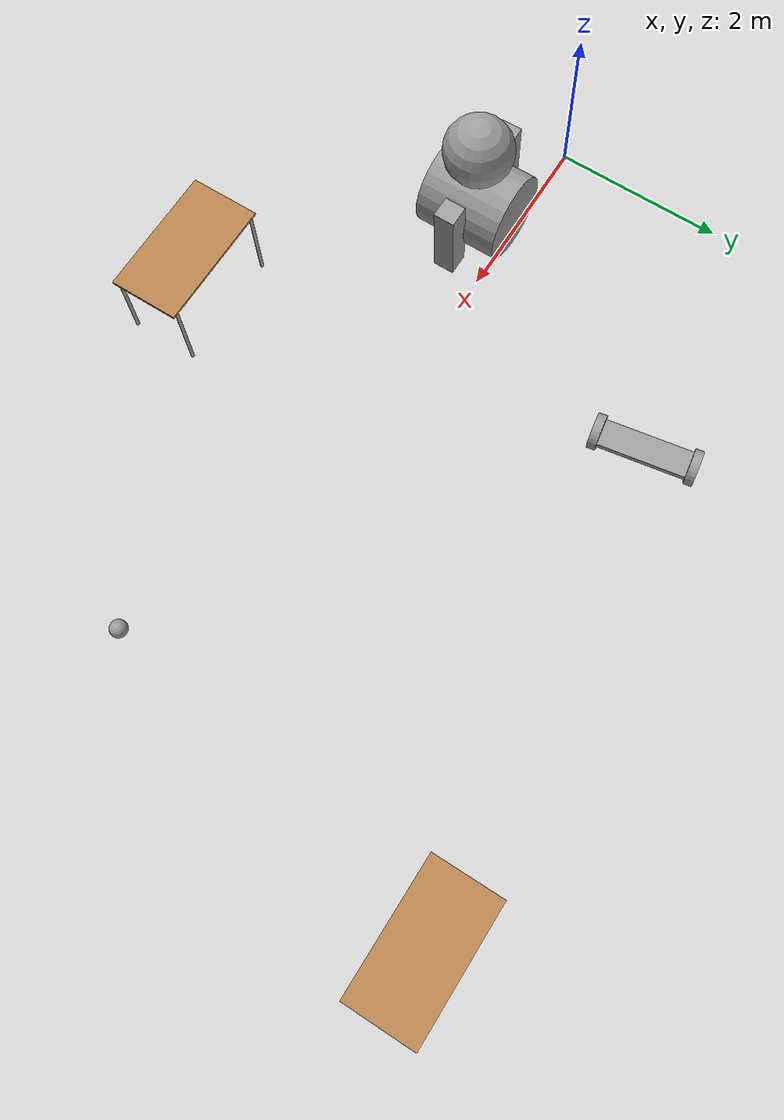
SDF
<sdf version="1.6">
 <world name="default">
  <model name="ground_plane">
   <static>1</static>
   <link name="link">
    <collision name="collision">
     <geometry><plane><normal>0 0 1</normal><size>100 100</size></plane></geometry>
     <surface>
      <contact><collide_bitmask>65535</collide_bitmask></contact>
      <friction><ode><mu>100</mu><mu2>50</mu2></ode></friction>
     </surface>
    </collision>
    <visual name="visual">
     <cast_shadows>0</cast_shadows>
     <geometry><plane><normal>0 0 1</normal><size>100 100</size></plane></geometry>
     <material>
      <script><uri>file://media/materials/scripts/gazebo.material</uri><name>Gazebo/Grey</name></script>
     </material>
    </visual>
   </link>
  </model>
  <model name="table_clone">
   <static>1</static>
   <link name="link">
    <collision name="surface">
     <pose>0 0 1 0 -0 0</pose>
     <geometry><box><size>1.5 0.8 0.03</size></box></geometry>
     <surface><friction><ode><mu>0.6</mu><mu2>0.6</mu2></ode></friction></surface>
    </collision>
    <visual name="visual1">
     <pose>0 0 1 0 -0 0</pose>
     <geometry><box><size>1.5 0.8 0.03</size></box></geometry>
     <material>
      <script><uri>file://media/materials/scripts/gazebo.material</uri><name>Gazebo/Wood</name></script>
     </material>
    </visual>
    <collision name="front_left_leg">
     <pose>0.68 0.38 0.5 0 -0 0</pose>
     <geometry><cylinder><radius>0.02</radius><length>1</length></cylinder></geometry>
    </collision>
    <visual name="front_left_leg">
     <pose>0.68 0.38 0.5 0 -0 0</pose>
     <geometry><cylinder><radius>0.02</radius><length>1</length></cylinder></geometry>
     <material>
      <script><uri>file://media/materials/scripts/gazebo.material</uri><name>Gazebo/Grey</name></script>
     </material>
    </visual>
    <collision name="front_right_leg">
     <pose>0.68 -0.38 0.5 0 -0 0</pose>
     <geometry><cylinder><radius>0.02</radius><length>1</length></cylinder></geometry>
    </collision>
    <visual name="front_right_leg">
     <pose>0.68 -0.38 0.5 0 -0 0</pose>
     <geometry><cylinder><radius>0.02</radius><length>1</length></cylinder></geometry>
     <material>
      <script><uri>file://media/materials/scripts/gazebo.material</uri><name>Gazebo/Grey</name></script>
     </material>
    </visual>
    <collision name="back_right_leg">
     <pose>-0.68 -0.38 0.5 0 -0 0</pose>
     <geometry><cylinder><radius>0.02</radius><length>1</length></cylinder></geometry>
    </collision>
    <visual name="back_right_leg">
     <pose>-0.68 -0.38 0.5 0 -0 0</pose>
     <geometry><cylinder><radius>0.02</radius><length>1</length></cylinder></geometry>
     <material>
      <script><uri>file://media/materials/scripts/gazebo.material</uri><name>Gazebo/Grey</name></script>
     </material>
    </visual>
    <collision name="back_left_leg">
     <pose>-0.68 0.38 0.5 0 -0 0</pose>
     <geometry><cylinder><radius>0.02</radius><length>1</length></cylinder></geometry>
    </collision>
    <visual name="back_left_leg">
     <pose>-0.68 0.38 0.5 0 -0 0</pose>
     <geometry><cylinder><radius>0.02</radius><length>1</length></cylinder></geometry>
     <material>
      <script><uri>file://media/materials/scripts/gazebo.material</uri><name>Gazebo/Grey</name></script>
     </material>
    </visual>
   </link>
   <pose>3.80901 -2.58621 0 0 -0 0</pose>
  </model>
  <model name="table_clone_0">
   <static>1</static>
   <link name="link">
    <collision name="surface">
     <pose>0 0 1 0 -0 0</pose>
     <geometry><box><size>1.5 0.8 0.03</size></box></geometry>
     <surface><friction><ode><mu>0.6</mu><mu2>0.6</mu2></ode></friction></surface>
    </collision>
    <visual name="visual1">
     <pose>0 0 1 0 -0 0</pose>
     <geometry><box><size>1.5 0.8 0.03</size></box></geometry>
     <material>
      <script><uri>file://media/materials/scripts/gazebo.material</uri><name>Gazebo/Wood</name></script>
     </material>
    </visual>
    <collision name="front_left_leg">
     <pose>0.68 0.38 0.5 0 -0 0</pose>
     <geometry><cylinder><radius>0.02</radius><length>1</length></cylinder></geometry>
    </collision>
    <visual name="front_left_leg">
     <pose>0.68 0.38 0.5 0 -0 0</pose>
     <geometry><cylinder><radius>0.02</radius><length>1</length></cylinder></geometry>
     <material>
      <script><uri>file://media/materials/scripts/gazebo.material</uri><name>Gazebo/Grey</name></script>
     </material>
    </visual>
    <collision name="front_right_leg">
     <pose>0.68 -0.38 0.5 0 -0 0</pose>
     <geometry><cylinder><radius>0.02</radius><length>1</length></cylinder></geometry>
    </collision>
    <visual name="front_right_leg">
     <pose>0.68 -0.38 0.5 0 -0 0</pose>
     <geometry><cylinder><radius>0.02</radius><length>1</length></cylinder></geometry>
     <material>
      <script><uri>file://media/materials/scripts/gazebo.material</uri><name>Gazebo/Grey</name></script>
     </material>
    </visual>
    <collision name="back_right_leg">
     <pose>-0.68 -0.38 0.5 0 -0 0</pose>
     <geometry><cylinder><radius>0.02</radius><length>1</length></cylinder></geometry>
    </collision>
    <visual name="back_right_leg">
     <pose>-0.68 -0.38 0.5 0 -0 0</pose>
     <geometry><cylinder><radius>0.02</radius><length>1</length></cylinder></geometry>
     <material>
      <script><uri>file://media/materials/scripts/gazebo.material</uri><name>Gazebo/Grey</name></script>
     </material>
    </visual>
    <collision name="back_left_leg">
     <pose>-0.68 0.38 0.5 0 -0 0</pose>
     <geometry><cylinder><radius>0.02</radius><length>1</length></cylinder></geometry>
    </collision>
    <visual name="back_left_leg">
     <pose>-0.68 0.38 0.5 0 -0 0</pose>
     <geometry><cylinder><radius>0.02</radius><length>1</length></cylinder></geometry>
     <material>
      <script><uri>file://media/materials/scripts/gazebo.material</uri><name>Gazebo/Grey</name></script>
     </material>
    </visual>
   </link>
   <pose>8.48665 3.40661 0 0 -0 0</pose>
  </model>
  <model name="Robot">
   <link name="link_0">
    <inertial>
     <mass>1</mass>
     <inertia>
      <ixx>0.166667</ixx>
      <ixy>0</ixy>
      <ixz>0</ixz>
      <iyy>0.166667</iyy>
      <iyz>0</iyz>
      <izz>0.166667</izz>
     </inertia>
    </inertial>
    <visual name="visual">
     <geometry><box><size>0.3 1 0.1</size></box></geometry>
     <material>
      <lighting>1</lighting>
      <script><uri>file://media/materials/scripts/gazebo.material</uri><name>Gazebo/Grey</name></script>
      <shader type="pixel"><normal_map>__default__</normal_map></shader>
      <ambient>0.3 0.3 0.3 1</ambient>
      <diffuse>0.7 0.7 0.7 1</diffuse>
      <specular>0.01 0.01 0.01 1</specular>
      <emissive>0 0 0 1</emissive>
     </material>
    </visual>
    <collision name="collision">
     <geometry><box><size>0.3 1 0.1</size></box></geometry>
     <surface>
      <friction>
       <ode><mu>1</mu><mu2>1</mu2><fdir1>0 0 0</fdir1><slip1>0</slip1><slip2>0</slip2></ode>
       <torsional>
        <coefficient>1</coefficient>
        <patch_radius>0</patch_radius>
        <surface_radius>0</surface_radius>
        <use_patch_radius>1</use_patch_radius>
        <ode><slip>0</slip></ode>
       </torsional>
      </friction>
      <bounce><restitution_coefficient>0</restitution_coefficient><threshold>1e+06</threshold></bounce>
      <contact>
       <collide_without_contact>0</collide_without_contact>
       <collide_without_contact_bitmask>1</collide_without_contact_bitmask>
       <collide_bitmask>1</collide_bitmask>
       <ode>
        <soft_cfm>0</soft_cfm>
        <soft_erp>0.2</soft_erp>
        <kp>1e+13</kp>
        <kd>1</kd>
        <max_vel>0.01</max_vel>
        <min_depth>0</min_depth>
       </ode>
       <bullet>
        <split_impulse>1</split_impulse>
        <split_impulse_penetration_threshold>-0.01</split_impulse_penetration_threshold>
        <soft_cfm>0</soft_cfm>
        <soft_erp>0.2</soft_erp>
        <kp>1e+13</kp>
        <kd>1</kd>
       </bullet>
      </contact>
     </surface>
    </collision>
   </link>
   <link name="link_1">
    <pose>0 -0.550019 0 1.5707 -0 0</pose>
    <inertial>
     <mass>1</mass>
     <inertia><ixx>0.145833</ixx><ixy>0</ixy><ixz>0</ixz><iyy>0.145833</iyy><iyz>0</iyz><izz>0.125</izz></inertia>
    </inertial>
    <visual name="visual">
     <geometry><cylinder><radius>0.2</radius><length>0.1</length></cylinder></geometry>
     <material>
      <lighting>1</lighting>
      <script><uri>file://media/materials/scripts/gazebo.material</uri><name>Gazebo/Grey</name></script>
      <shader type="pixel"><normal_map>__default__</normal_map></shader>
      <ambient>0.3 0.3 0.3 1</ambient>
      <diffuse>0.7 0.7 0.7 1</diffuse>
      <specular>0.01 0.01 0.01 1</specular>
      <emissive>0 0 0 1</emissive>
     </material>
    </visual>
    <collision name="collision">
     <geometry><cylinder><radius>0.2</radius><length>0.1</length></cylinder></geometry>
     <surface>
      <friction>
       <ode><mu>1</mu><mu2>1</mu2><fdir1>0 0 0</fdir1><slip1>0</slip1><slip2>0</slip2></ode>
       <torsional>
        <coefficient>1</coefficient>
        <patch_radius>0</patch_radius>
        <surface_radius>0</surface_radius>
        <use_patch_radius>1</use_patch_radius>
        <ode><slip>0</slip></ode>
       </torsional>
      </friction>
      <bounce><restitution_coefficient>0</restitution_coefficient><threshold>1e+06</threshold></bounce>
      <contact>
       <collide_without_contact>0</collide_without_contact>
       <collide_without_contact_bitmask>1</collide_without_contact_bitmask>
       <collide_bitmask>1</collide_bitmask>
       <ode>
        <soft_cfm>0</soft_cfm>
        <soft_erp>0.2</soft_erp>
        <kp>1e+13</kp>
        <kd>1</kd>
        <max_vel>0.01</max_vel>
        <min_depth>0</min_depth>
       </ode>
       <bullet>
        <split_impulse>1</split_impulse>
        <split_impulse_penetration_threshold>-0.01</split_impulse_penetration_threshold>
        <soft_cfm>0</soft_cfm>
        <soft_erp>0.2</soft_erp>
        <kp>1e+13</kp>
        <kd>1</kd>
       </bullet>
      </contact>
     </surface>
    </collision>
   </link>
   <link name="link_1_clone">
    <pose>0 0.550019 0 1.5707 -0 0</pose>
    <inertial>
     <mass>1</mass>
     <inertia><ixx>0.145833</ixx><ixy>0</ixy><ixz>0</ixz><iyy>0.145833</iyy><iyz>0</iyz><izz>0.125</izz></inertia>
    </inertial>
    <visual name="visual">
     <geometry><cylinder><radius>0.2</radius><length>0.1</length></cylinder></geometry>
     <material>
      <lighting>1</lighting>
      <script><uri>file://media/materials/scripts/gazebo.material</uri><name>Gazebo/Grey</name></script>
      <shader type="pixel"><normal_map>__default__</normal_map></shader>
      <ambient>0.3 0.3 0.3 1</ambient>
      <diffuse>0.7 0.7 0.7 1</diffuse>
      <specular>0.01 0.01 0.01 1</specular>
      <emissive>0 0 0 1</emissive>
     </material>
    </visual>
    <collision name="collision">
     <geometry><cylinder><radius>0.2</radius><length>0.1</length></cylinder></geometry>
     <surface>
      <friction>
       <ode><mu>1</mu><mu2>1</mu2><fdir1>0 0 0</fdir1><slip1>0</slip1><slip2>0</slip2></ode>
       <torsional>
        <coefficient>1</coefficient>
        <patch_radius>0</patch_radius>
        <surface_radius>0</surface_radius>
        <use_patch_radius>1</use_patch_radius>
        <ode><slip>0</slip></ode>
       </torsional>
      </friction>
      <bounce><restitution_coefficient>0</restitution_coefficient><threshold>1e+06</threshold></bounce>
      <contact>
       <collide_without_contact>0</collide_without_contact>
       <collide_without_contact_bitmask>1</collide_without_contact_bitmask>
       <collide_bitmask>1</collide_bitmask>
       <ode>
        <soft_cfm>0</soft_cfm>
        <soft_erp>0.2</soft_erp>
        <kp>1e+13</kp>
        <kd>1</kd>
        <max_vel>0.01</max_vel>
        <min_depth>0</min_depth>
       </ode>
       <bullet>
        <split_impulse>1</split_impulse>
        <split_impulse_penetration_threshold>-0.01</split_impulse_penetration_threshold>
        <soft_cfm>0</soft_cfm>
        <soft_erp>0.2</soft_erp>
        <kp>1e+13</kp>
        <kd>1</kd>
       </bullet>
      </contact>
     </surface>
    </collision>
   </link>
   <joint name="link_0_JOINT_2" type="revolute">
    <parent>link_0</parent>
    <child>link_1</child>
    <axis>
     <xyz>0 0 1</xyz>
     <use_parent_model_frame>0</use_parent_model_frame>
     <limit>
      <lower>-1.79769e+308</lower>
      <upper>1.79769e+308</upper>
      <effort>-1</effort>
      <velocity>-1</velocity>
     </limit>
     <dynamics>
      <spring_reference>0</spring_reference>
      <spring_stiffness>0</spring_stiffness>
      <damping>0</damping>
     </dynamics>
    </axis>
    <physics>
     <ode><limit><cfm>0</cfm><erp>0.2</erp></limit><suspension><cfm>0</cfm><erp>0.2</erp></suspension></ode>
    </physics>
   </joint>
   <joint name="link_0_JOINT_3" type="revolute">
    <parent>link_0</parent>
    <child>link_1_clone</child>
    <axis>
     <xyz>0 0 1</xyz>
     <use_parent_model_frame>0</use_parent_model_frame>
     <limit>
      <lower>-1.79769e+308</lower>
      <upper>1.79769e+308</upper>
      <effort>-1</effort>
      <velocity>-1</velocity>
     </limit>
     <dynamics>
      <spring_reference>0</spring_reference>
      <spring_stiffness>0</spring_stiffness>
      <damping>0</damping>
     </dynamics>
    </axis>
    <physics>
     <ode><limit><cfm>0</cfm><erp>0.2</erp></limit><suspension><cfm>0</cfm><erp>0.2</erp></suspension></ode>
    </physics>
   </joint>
   <static>0</static>
   <pose>2.88499 2.6602 0.200002 4e-06 0.133474 0.165462</pose>
  </model>
  <model name="TeddyRobot">
   <link name="link_0">
    <pose>0.005539 0.001875 -0.225013 1.5707 -0 0</pose>
    <inertial>
     <mass>1</mass>
     <inertia><ixx>0.145833</ixx><ixy>0</ixy><ixz>0</ixz><iyy>0.145833</iyy><iyz>0</iyz><izz>0.125</izz></inertia>
    </inertial>
    <visual name="visual">
     <geometry><cylinder><radius>0.5</radius><length>1</length></cylinder></geometry>
     <material>
      <lighting>1</lighting>
      <script><uri>file://media/materials/scripts/gazebo.material</uri><name>Gazebo/Grey</name></script>
      <shader type="pixel"><normal_map>__default__</normal_map></shader>
      <ambient>0.3 0.3 0.3 1</ambient>
      <diffuse>0.7 0.7 0.7 1</diffuse>
      <specular>0.01 0.01 0.01 1</specular>
      <emissive>0 0 0 1</emissive>
     </material>
    </visual>
    <collision name="collision">
     <geometry><cylinder><radius>0.5</radius><length>1</length></cylinder></geometry>
     <surface>
      <friction>
       <ode><mu>1</mu><mu2>1</mu2><fdir1>0 0 0</fdir1><slip1>0</slip1><slip2>0</slip2></ode>
       <torsional>
        <coefficient>1</coefficient>
        <patch_radius>0</patch_radius>
        <surface_radius>0</surface_radius>
        <use_patch_radius>1</use_patch_radius>
        <ode><slip>0</slip></ode>
       </torsional>
      </friction>
      <bounce><restitution_coefficient>0</restitution_coefficient><threshold>1e+06</threshold></bounce>
      <contact>
       <collide_without_contact>0</collide_without_contact>
       <collide_without_contact_bitmask>1</collide_without_contact_bitmask>
       <collide_bitmask>1</collide_bitmask>
       <ode>
        <soft_cfm>0</soft_cfm>
        <soft_erp>0.2</soft_erp>
        <kp>1e+13</kp>
        <kd>1</kd>
        <max_vel>0.01</max_vel>
        <min_depth>0</min_depth>
       </ode>
       <bullet>
        <split_impulse>1</split_impulse>
        <split_impulse_penetration_threshold>-0.01</split_impulse_penetration_threshold>
        <soft_cfm>0</soft_cfm>
        <soft_erp>0.2</soft_erp>
        <kp>1e+13</kp>
        <kd>1</kd>
       </bullet>
      </contact>
     </surface>
    </collision>
   </link>
   <link name="link_1">
    <pose>-0.605539 -0.005625 -0.224964 0 -0 0</pose>
    <inertial>
     <mass>1</mass>
     <inertia>
      <ixx>0.166667</ixx>
      <ixy>0</ixy>
      <ixz>0</ixz>
      <iyy>0.166667</iyy>
      <iyz>0</iyz>
      <izz>0.166667</izz>
     </inertia>
    </inertial>
    <visual name="visual">
     <geometry><box><size>0.25 0.25 1</size></box></geometry>
     <material>
      <lighting>1</lighting>
      <script><uri>file://media/materials/scripts/gazebo.material</uri><name>Gazebo/Grey</name></script>
      <shader type="pixel"><normal_map>__default__</normal_map></shader>
      <ambient>0.3 0.3 0.3 1</ambient>
      <diffuse>0.7 0.7 0.7 1</diffuse>
      <specular>0.01 0.01 0.01 1</specular>
      <emissive>0 0 0 1</emissive>
     </material>
    </visual>
    <collision name="collision">
     <geometry><box><size>0.25 0.25 1</size></box></geometry>
     <surface>
      <friction>
       <ode><mu>1</mu><mu2>1</mu2><fdir1>0 0 0</fdir1><slip1>0</slip1><slip2>0</slip2></ode>
       <torsional>
        <coefficient>1</coefficient>
        <patch_radius>0</patch_radius>
        <surface_radius>0</surface_radius>
        <use_patch_radius>1</use_patch_radius>
        <ode><slip>0</slip></ode>
       </torsional>
      </friction>
      <bounce><restitution_coefficient>0</restitution_coefficient><threshold>1e+06</threshold></bounce>
      <contact>
       <collide_without_contact>0</collide_without_contact>
       <collide_without_contact_bitmask>1</collide_without_contact_bitmask>
       <collide_bitmask>1</collide_bitmask>
       <ode>
        <soft_cfm>0</soft_cfm>
        <soft_erp>0.2</soft_erp>
        <kp>1e+13</kp>
        <kd>1</kd>
        <max_vel>0.01</max_vel>
        <min_depth>0</min_depth>
       </ode>
       <bullet>
        <split_impulse>1</split_impulse>
        <split_impulse_penetration_threshold>-0.01</split_impulse_penetration_threshold>
        <soft_cfm>0</soft_cfm>
        <soft_erp>0.2</soft_erp>
        <kp>1e+13</kp>
        <kd>1</kd>
       </bullet>
      </contact>
     </surface>
    </collision>
   </link>
   <link name="link_1_clone">
    <pose>0.594461 0.001875 -0.225061 0 -0 0</pose>
    <inertial>
     <mass>1</mass>
     <inertia>
      <ixx>0.166667</ixx>
      <ixy>0</ixy>
      <ixz>0</ixz>
      <iyy>0.166667</iyy>
      <iyz>0</iyz>
      <izz>0.166667</izz>
     </inertia>
    </inertial>
    <visual name="visual">
     <geometry><box><size>0.25 0.25 1</size></box></geometry>
     <material>
      <lighting>1</lighting>
      <script><uri>file://media/materials/scripts/gazebo.material</uri><name>Gazebo/Grey</name></script>
      <shader type="pixel"><normal_map>__default__</normal_map></shader>
      <ambient>0.3 0.3 0.3 1</ambient>
      <diffuse>0.7 0.7 0.7 1</diffuse>
      <specular>0.01 0.01 0.01 1</specular>
      <emissive>0 0 0 1</emissive>
     </material>
    </visual>
    <collision name="collision">
     <geometry><box><size>0.25 0.25 1</size></box></geometry>
     <surface>
      <friction>
       <ode><mu>1</mu><mu2>1</mu2><fdir1>0 0 0</fdir1><slip1>0</slip1><slip2>0</slip2></ode>
       <torsional>
        <coefficient>1</coefficient>
        <patch_radius>0</patch_radius>
        <surface_radius>0</surface_radius>
        <use_patch_radius>1</use_patch_radius>
        <ode><slip>0</slip></ode>
       </torsional>
      </friction>
      <bounce><restitution_coefficient>0</restitution_coefficient><threshold>1e+06</threshold></bounce>
      <contact>
       <collide_without_contact>0</collide_without_contact>
       <collide_without_contact_bitmask>1</collide_without_contact_bitmask>
       <collide_bitmask>1</collide_bitmask>
       <ode>
        <soft_cfm>0</soft_cfm>
        <soft_erp>0.2</soft_erp>
        <kp>1e+13</kp>
        <kd>1</kd>
        <max_vel>0.01</max_vel>
        <min_depth>0</min_depth>
       </ode>
       <bullet>
        <split_impulse>1</split_impulse>
        <split_impulse_penetration_threshold>-0.01</split_impulse_penetration_threshold>
        <soft_cfm>0</soft_cfm>
        <soft_erp>0.2</soft_erp>
        <kp>1e+13</kp>
        <kd>1</kd>
       </bullet>
      </contact>
     </surface>
    </collision>
   </link>
   <link name="link_2">
    <pose>0.005539 0.001875 0.675036 0 -0 0</pose>
    <inertial>
     <mass>1</mass>
     <inertia><ixx>0.1</ixx><ixy>0</ixy><ixz>0</ixz><iyy>0.1</iyy><iyz>0</iyz><izz>0.1</izz></inertia>
    </inertial>
    <visual name="visual">
     <geometry><sphere><radius>0.4</radius></sphere></geometry>
     <material>
      <lighting>1</lighting>
      <script><uri>file://media/materials/scripts/gazebo.material</uri><name>Gazebo/Grey</name></script>
      <shader type="pixel"><normal_map>__default__</normal_map></shader>
      <ambient>0.3 0.3 0.3 1</ambient>
      <diffuse>0.7 0.7 0.7 1</diffuse>
      <specular>0.01 0.01 0.01 1</specular>
      <emissive>0 0 0 1</emissive>
     </material>
    </visual>
    <collision name="collision">
     <geometry><sphere><radius>0.4</radius></sphere></geometry>
     <surface>
      <friction>
       <ode><mu>1</mu><mu2>1</mu2><fdir1>0 0 0</fdir1><slip1>0</slip1><slip2>0</slip2></ode>
       <torsional>
        <coefficient>1</coefficient>
        <patch_radius>0</patch_radius>
        <surface_radius>0</surface_radius>
        <use_patch_radius>1</use_patch_radius>
        <ode><slip>0</slip></ode>
       </torsional>
      </friction>
      <bounce><restitution_coefficient>0</restitution_coefficient><threshold>1e+06</threshold></bounce>
      <contact>
       <collide_without_contact>0</collide_without_contact>
       <collide_without_contact_bitmask>1</collide_without_contact_bitmask>
       <collide_bitmask>1</collide_bitmask>
       <ode>
        <soft_cfm>0</soft_cfm>
        <soft_erp>0.2</soft_erp>
        <kp>1e+13</kp>
        <kd>1</kd>
        <max_vel>0.01</max_vel>
        <min_depth>0</min_depth>
       </ode>
       <bullet>
        <split_impulse>1</split_impulse>
        <split_impulse_penetration_threshold>-0.01</split_impulse_penetration_threshold>
        <soft_cfm>0</soft_cfm>
        <soft_erp>0.2</soft_erp>
        <kp>1e+13</kp>
        <kd>1</kd>
       </bullet>
      </contact>
     </surface>
    </collision>
   </link>
   <joint name="link_0_JOINT_2" type="revolute">
    <parent>link_0</parent>
    <child>link_1</child>
    <axis>
     <xyz>1 0 0</xyz>
     <use_parent_model_frame>0</use_parent_model_frame>
     <limit>
      <lower>-1.79769e+308</lower>
      <upper>1.79769e+308</upper>
      <effort>-1</effort>
      <velocity>-1</velocity>
     </limit>
     <dynamics>
      <spring_reference>0</spring_reference>
      <spring_stiffness>0</spring_stiffness>
      <damping>0</damping>
     </dynamics>
    </axis>
    <physics>
     <ode><limit><cfm>0</cfm><erp>0.2</erp></limit><suspension><cfm>0</cfm><erp>0.2</erp></suspension></ode>
    </physics>
   </joint>
   <joint name="link_0_JOINT_3" type="revolute">
    <parent>link_0</parent>
    <child>link_1_clone</child>
    <axis>
     <xyz>1 0 0</xyz>
     <use_parent_model_frame>0</use_parent_model_frame>
     <limit>
      <lower>-1.79769e+308</lower>
      <upper>1.79769e+308</upper>
      <effort>-1</effort>
      <velocity>-1</velocity>
     </limit>
     <dynamics>
      <spring_reference>0</spring_reference>
      <spring_stiffness>0</spring_stiffness>
      <damping>0</damping>
     </dynamics>
    </axis>
    <physics>
     <ode><limit><cfm>0</cfm><erp>0.2</erp></limit><suspension><cfm>0</cfm><erp>0.2</erp></suspension></ode>
    </physics>
   </joint>
   <joint name="link_0_JOINT_4" type="fixed">
    <parent>link_0</parent>
    <child>link_2</child>
    <physics>
     <ode><limit><cfm>0</cfm><erp>0.2</erp></limit><suspension><cfm>0</cfm><erp>0.2</erp></suspension></ode>
    </physics>
   </joint>
   <static>0</static>
   <pose>1.3252 -0.426795 0.725023 9e-05 -8e-05 0.001383</pose>
  </model>
  <model name="Untitled_0">
   <link name="link_0">
    <inertial>
     <mass>1</mass>
     <inertia><ixx>0.1</ixx><ixy>0</ixy><ixz>0</ixz><iyy>0.1</iyy><iyz>0</iyz><izz>0.1</izz></inertia>
    </inertial>
    <visual name="visual">
     <geometry><sphere><radius>0.1</radius></sphere></geometry>
     <material>
      <lighting>1</lighting>
      <script><uri>file://media/materials/scripts/gazebo.material</uri><name>Gazebo/Grey</name></script>
      <shader type="pixel"><normal_map>__default__</normal_map></shader>
      <ambient>1 1 1 1</ambient>
      <diffuse>1 1 1 1</diffuse>
      <specular>1 1 1 1</specular>
      <emissive>1 1 1 1</emissive>
     </material>
    </visual>
    <collision name="collision">
     <geometry><sphere><radius>0.1</radius></sphere></geometry>
     <surface>
      <friction>
       <ode><mu>1</mu><mu2>1</mu2><fdir1>0 0 0</fdir1><slip1>0</slip1><slip2>0</slip2></ode>
       <torsional>
        <coefficient>1</coefficient>
        <patch_radius>0</patch_radius>
        <surface_radius>0</surface_radius>
        <use_patch_radius>1</use_patch_radius>
        <ode><slip>0</slip></ode>
       </torsional>
      </friction>
      <bounce><restitution_coefficient>0</restitution_coefficient><threshold>1e+06</threshold></bounce>
      <contact>
       <collide_without_contact>0</collide_without_contact>
       <collide_without_contact_bitmask>1</collide_without_contact_bitmask>
       <collide_bitmask>1</collide_bitmask>
       <ode>
        <soft_cfm>0</soft_cfm>
        <soft_erp>0.2</soft_erp>
        <kp>1e+13</kp>
        <kd>1</kd>
        <max_vel>0.01</max_vel>
        <min_depth>0</min_depth>
       </ode>
       <bullet>
        <split_impulse>1</split_impulse>
        <split_impulse_penetration_threshold>-0.01</split_impulse_penetration_threshold>
        <soft_cfm>0</soft_cfm>
        <soft_erp>0.2</soft_erp>
        <kp>1e+13</kp>
        <kd>1</kd>
       </bullet>
      </contact>
     </surface>
    </collision>
   </link>
   <static>0</static>
   <pose>7.47685 -0.975063 0.1 0 -0 0</pose>
  </model>
 </world>
</sdf>
